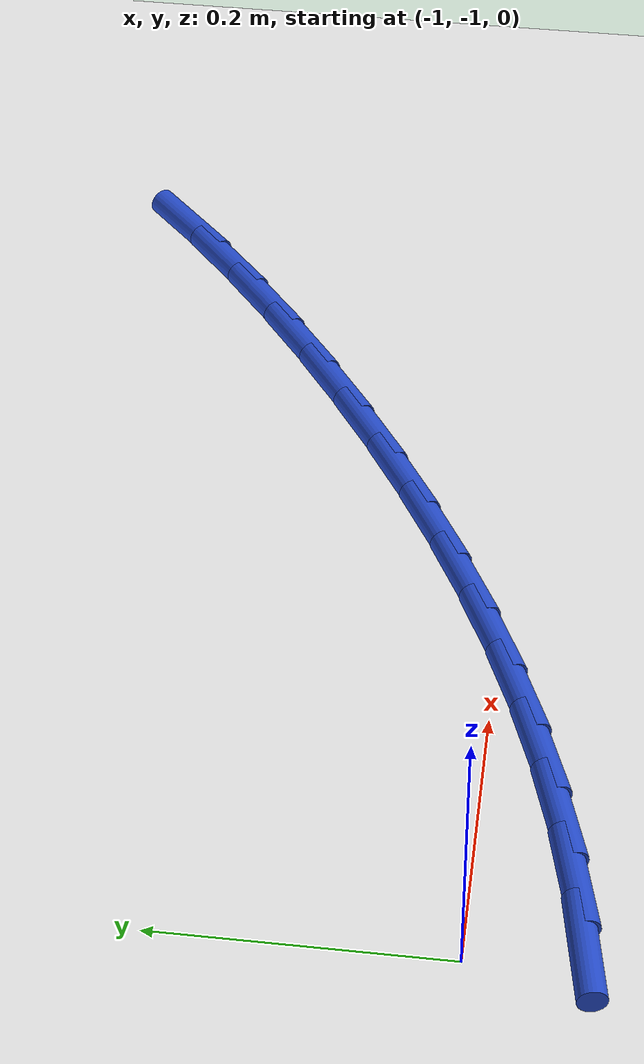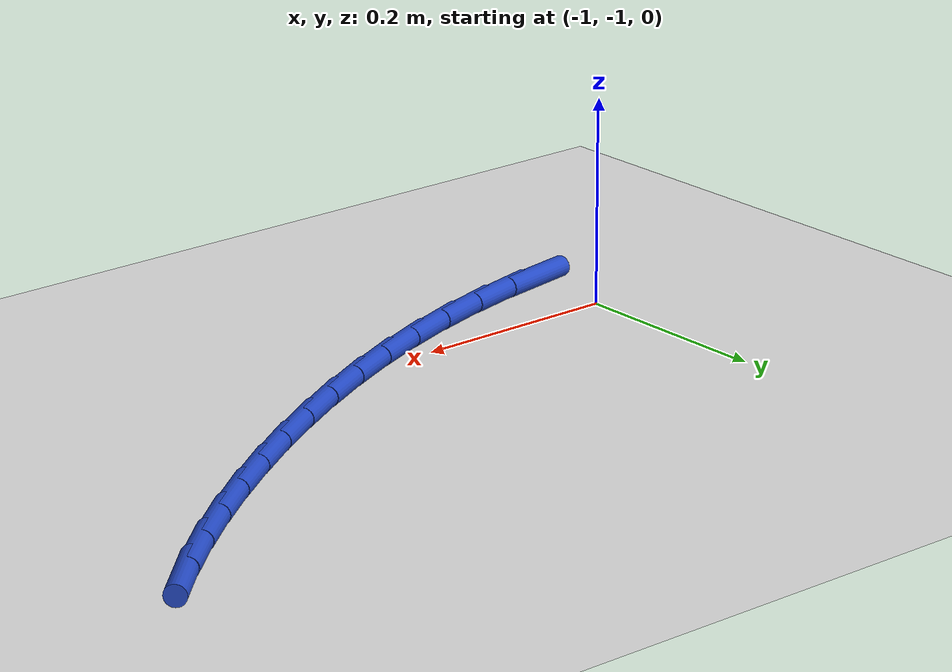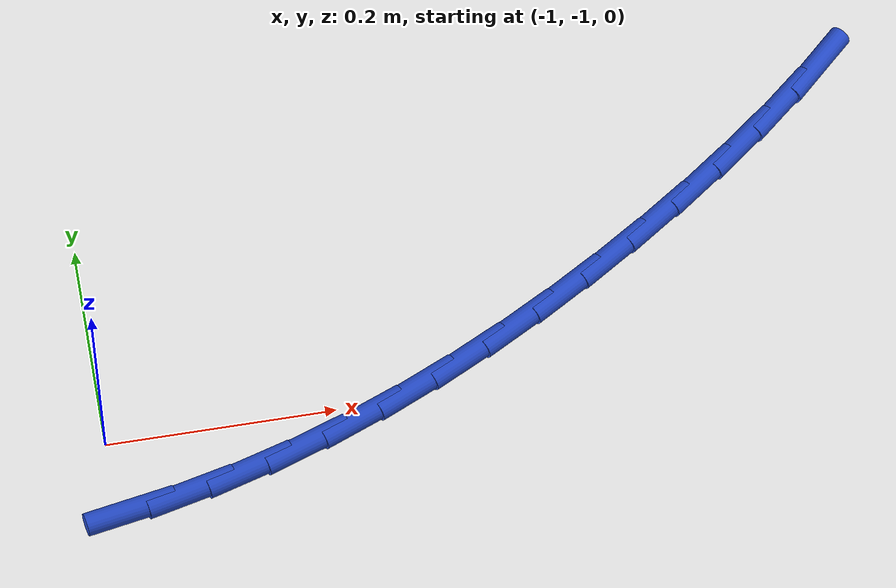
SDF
<sdf version="1.6">
 <world name="default">
  <model name="ground_plane">
   <static>1</static>
   <link name="link">
    <collision name="collision">
     <geometry><plane><normal>0 0 1</normal><size>100 100</size></plane></geometry>
     <surface><friction><ode><mu>100</mu><mu2>50</mu2></ode></friction></surface>
    </collision>
    <visual name="visual">
     <cast_shadows>0</cast_shadows>
     <geometry><plane><normal>0 0 1</normal><size>100 100</size></plane></geometry>
     <material>
      <script><uri>file://media/materials/scripts/gazebo.material</uri><name>Gazebo/WhiteGlow</name></script>
     </material>
    </visual>
   </link>
  </model>
  <model name="line">
   <link name="link_91">
    <pose>-0.9884594688436198 -1.074307295724218 0.01 0 1.57 0.18193889124218807</pose>
    <collision name="collision">
     <geometry><cylinder><radius>0.01</radius><length>0.08</length></cylinder></geometry>
    </collision>
    <visual name="visual">
     <material>
      <script><name>Gazebo/Blue</name><uri>file://media/materials/scripts/gazebo.material</uri></script>
     </material>
     <geometry><cylinder><radius>0.01</radius><length>0.08</length></cylinder></geometry>
    </visual>
   </link>
   <link name="link_92">
    <pose>-0.9355949026926732 -1.0645816253392155 0.01 0 1.57 0.2421357599040844</pose>
    <collision name="collision">
     <geometry><cylinder><radius>0.01</radius><length>0.08</length></cylinder></geometry>
    </collision>
    <visual name="visual">
     <material>
      <script><name>Gazebo/Blue</name><uri>file://media/materials/scripts/gazebo.material</uri></script>
     </material>
     <geometry><cylinder><radius>0.01</radius><length>0.08</length></cylinder></geometry>
    </visual>
   </link>
   <link name="link_93">
    <pose>-0.883247648738955 -1.0516528192895285 0.01 0 1.57 0.2981896352983404</pose>
    <collision name="collision">
     <geometry><cylinder><radius>0.01</radius><length>0.08</length></cylinder></geometry>
    </collision>
    <visual name="visual">
     <material>
      <script><name>Gazebo/Blue</name><uri>file://media/materials/scripts/gazebo.material</uri></script>
     </material>
     <geometry><cylinder><radius>0.01</radius><length>0.08</length></cylinder></geometry>
    </visual>
   </link>
   <link name="link_94">
    <pose>-0.8314761964833479 -1.0357406687199309 0.01 0 1.57 0.35015845261308787</pose>
    <collision name="collision">
     <geometry><cylinder><radius>0.01</radius><length>0.08</length></cylinder></geometry>
    </collision>
    <visual name="visual">
     <material>
      <script><name>Gazebo/Blue</name><uri>file://media/materials/scripts/gazebo.material</uri></script>
     </material>
     <geometry><cylinder><radius>0.01</radius><length>0.08</length></cylinder></geometry>
    </visual>
   </link>
   <link name="link_95">
    <pose>-0.7803390354267318 -1.0170649647751955 0.01 0 1.57 0.39818102936745675</pose>
    <collision name="collision">
     <geometry><cylinder><radius>0.01</radius><length>0.08</length></cylinder></geometry>
    </collision>
    <visual name="visual">
     <material>
      <script><name>Gazebo/Blue</name><uri>file://media/materials/scripts/gazebo.material</uri></script>
     </material>
     <geometry><cylinder><radius>0.01</radius><length>0.08</length></cylinder></geometry>
    </visual>
   </link>
   <link name="link_96">
    <pose>-0.7298946550699884 -0.9958454986000972 0.01 0 1.57 0.4424497524015652</pose>
    <collision name="collision">
     <geometry><cylinder><radius>0.01</radius><length>0.08</length></cylinder></geometry>
    </collision>
    <visual name="visual">
     <material>
      <script><name>Gazebo/Blue</name><uri>file://media/materials/scripts/gazebo.material</uri></script>
     </material>
     <geometry><cylinder><radius>0.01</radius><length>0.08</length></cylinder></geometry>
    </visual>
   </link>
   <link name="link_97">
    <pose>-0.6802015449139996 -0.9723020613394098 0.01 0 1.57 0.4831881047911758</pose>
    <collision name="collision">
     <geometry><cylinder><radius>0.01</radius><length>0.08</length></cylinder></geometry>
    </collision>
    <visual name="visual">
     <material>
      <script><name>Gazebo/Blue</name><uri>file://media/materials/scripts/gazebo.material</uri></script>
     </material>
     <geometry><cylinder><radius>0.01</radius><length>0.08</length></cylinder></geometry>
    </visual>
   </link>
   <link name="link_98">
    <pose>-0.6313181944596465 -0.9466544441379071 0.01 0 1.57 0.5206333090448667</pose>
    <collision name="collision">
     <geometry><cylinder><radius>0.01</radius><length>0.08</length></cylinder></geometry>
    </collision>
    <visual name="visual">
     <material>
      <script><name>Gazebo/Blue</name><uri>file://media/materials/scripts/gazebo.material</uri></script>
     </material>
     <geometry><cylinder><radius>0.01</radius><length>0.08</length></cylinder></geometry>
    </visual>
   </link>
   <link name="link_99">
    <pose>-0.5833030932078104 -0.9191224381403633 0.01 0 1.57 0.5550236282683906</pose>
    <collision name="collision">
     <geometry><cylinder><radius>0.01</radius><length>0.08</length></cylinder></geometry>
    </collision>
    <visual name="visual">
     <material>
      <script><name>Gazebo/Blue</name><uri>file://media/materials/scripts/gazebo.material</uri></script>
     </material>
     <geometry><cylinder><radius>0.01</radius><length>0.08</length></cylinder></geometry>
    </visual>
   </link>
   <link name="link_100">
    <pose>-0.5362147306593721 -0.8899258344915519 0.01 0 1.57 0.5865987489288861</pose>
    <collision name="collision">
     <geometry><cylinder><radius>0.01</radius><length>0.08</length></cylinder></geometry>
    </collision>
    <visual name="visual">
     <material>
      <script><name>Gazebo/Blue</name><uri>file://media/materials/scripts/gazebo.material</uri></script>
     </material>
     <geometry><cylinder><radius>0.01</radius><length>0.08</length></cylinder></geometry>
    </visual>
   </link>
   <link name="link_101">
    <pose>-0.4901118011490777 -0.8592839478592903 0.01 0 1.57 0.6171713987124026</pose>
    <collision name="collision">
     <geometry><cylinder><radius>0.01</radius><length>0.08</length></cylinder></geometry>
    </collision>
    <visual name="visual">
     <material>
      <script><name>Gazebo/Blue</name><uri>file://media/materials/scripts/gazebo.material</uri></script>
     </material>
     <geometry><cylinder><radius>0.01</radius><length>0.08</length></cylinder></geometry>
    </visual>
   </link>
   <link name="link_102">
    <pose>-0.4450885759806157 -0.8273333350822446 0.01 0 1.57 0.6503246831903695</pose>
    <collision name="collision">
     <geometry><cylinder><radius>0.01</radius><length>0.08</length></cylinder></geometry>
    </collision>
    <visual name="visual">
     <material>
      <script><name>Gazebo/Blue</name><uri>file://media/materials/scripts/gazebo.material</uri></script>
     </material>
     <geometry><cylinder><radius>0.01</radius><length>0.08</length></cylinder></geometry>
    </visual>
   </link>
   <link name="link_103">
    <pose>-0.4013151573147658 -0.7940341580643292 0.01 0 1.57 0.6866527054030707</pose>
    <collision name="collision">
     <geometry><cylinder><radius>0.01</radius><length>0.08</length></cylinder></geometry>
    </collision>
    <visual name="visual">
     <material>
      <script><name>Gazebo/Blue</name><uri>file://media/materials/scripts/gazebo.material</uri></script>
     </material>
     <geometry><cylinder><radius>0.01</radius><length>0.08</length></cylinder></geometry>
    </visual>
   </link>
   <link name="link_104">
    <pose>-0.3589713797295544 -0.7593239395204644 0.01 0 1.57 0.7263058273363007</pose>
    <collision name="collision">
     <geometry><cylinder><radius>0.01</radius><length>0.08</length></cylinder></geometry>
    </collision>
    <visual name="visual">
     <material>
      <script><name>Gazebo/Blue</name><uri>file://media/materials/scripts/gazebo.material</uri></script>
     </material>
     <geometry><cylinder><radius>0.01</radius><length>0.08</length></cylinder></geometry>
    </visual>
   </link>
   <link name="link_105">
    <pose>-0.3182370778030092 -0.7231402021655715 0.01 0 1.57 0.7694174899926903</pose>
    <collision name="collision">
     <geometry><cylinder><radius>0.01</radius><length>0.08</length></cylinder></geometry>
    </collision>
    <visual name="visual">
     <material>
      <script><name>Gazebo/Blue</name><uri>file://media/materials/scripts/gazebo.material</uri></script>
     </material>
     <geometry><cylinder><radius>0.01</radius><length>0.08</length></cylinder></geometry>
    </visual>
   </link>
  </model>
 </world>
</sdf>
